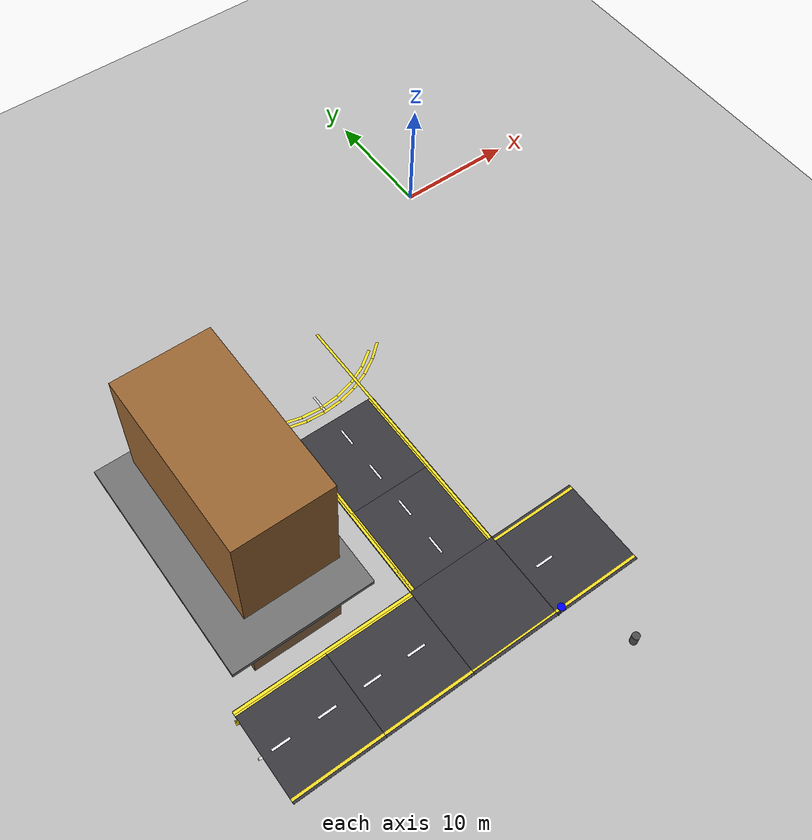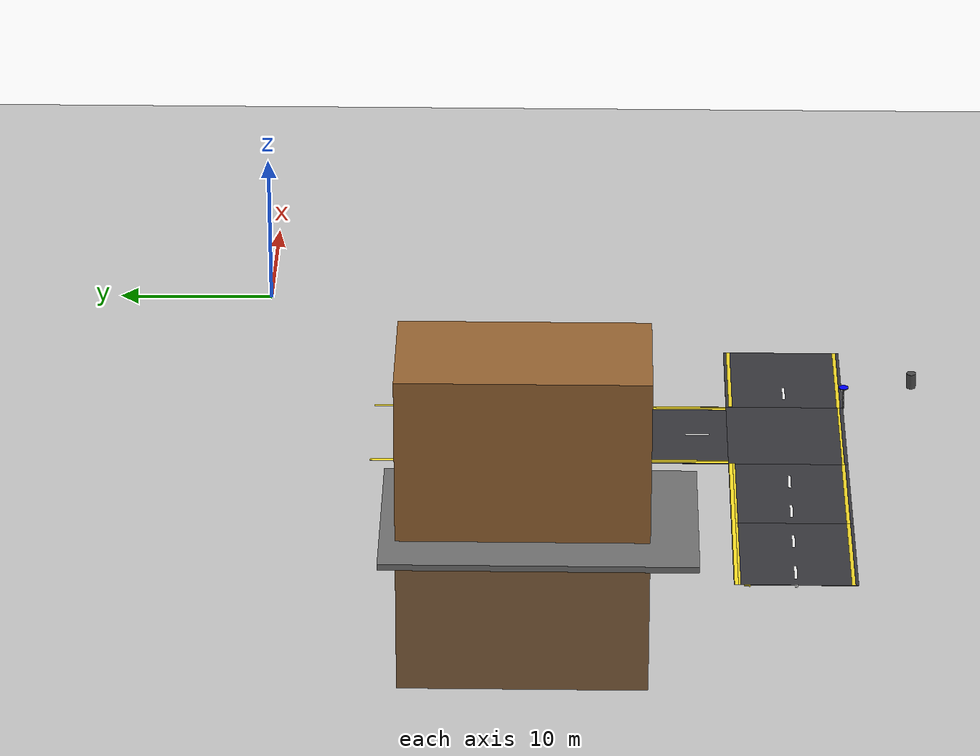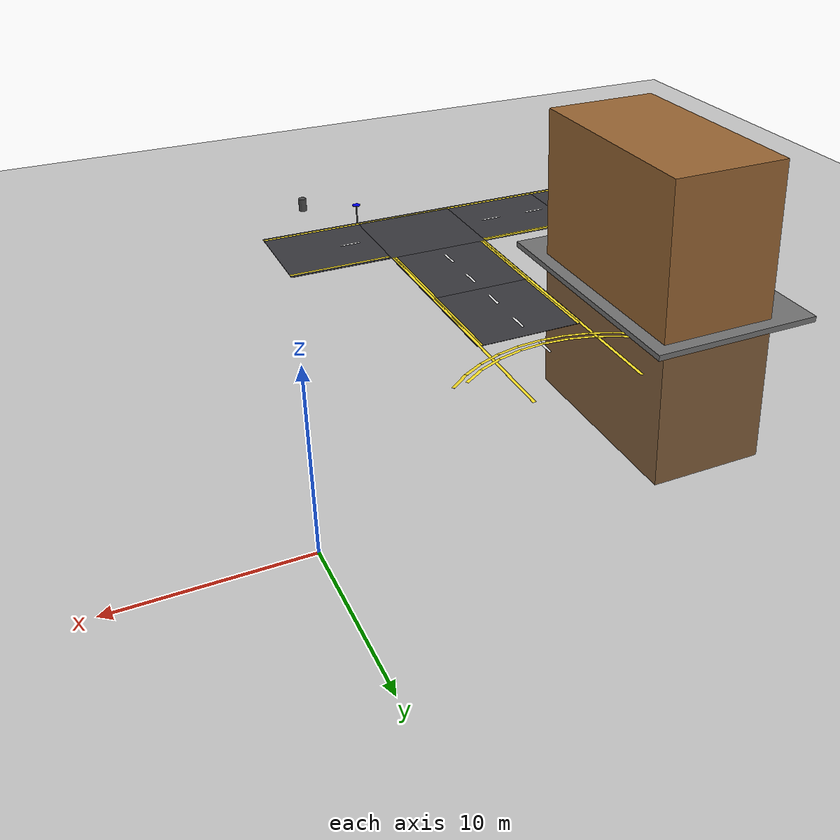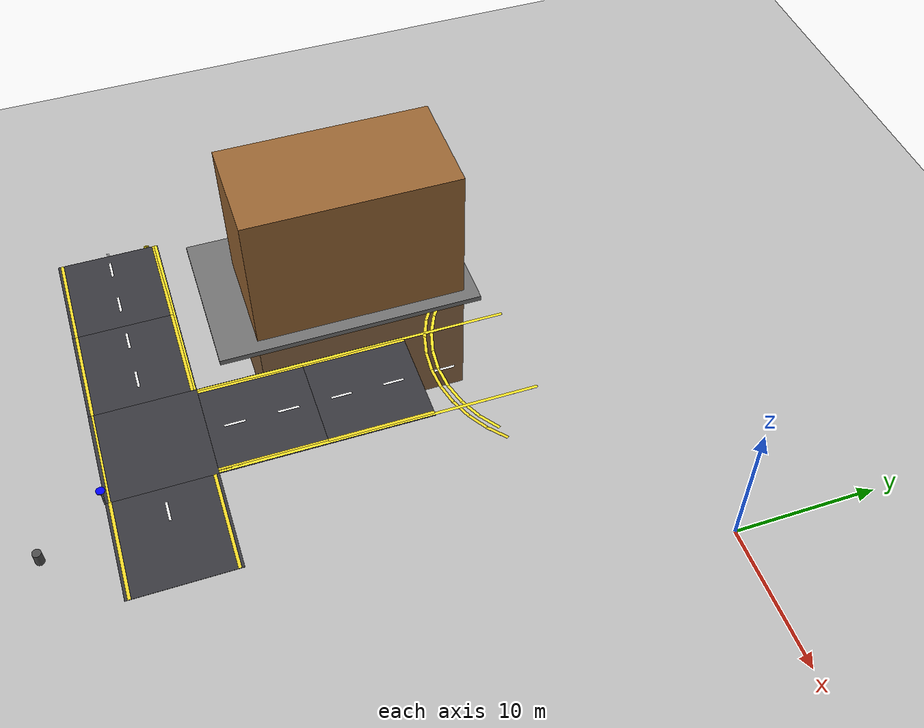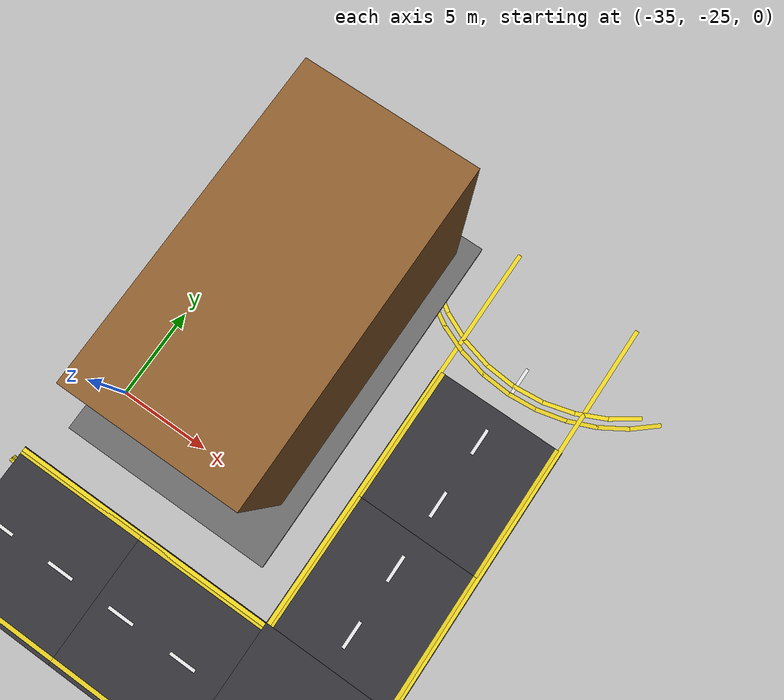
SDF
<sdf version="1.7">
 <world name="compact_city">
  <model name="ground_plane">
   <static>1</static>
   <pose>0 0 0.01 0 -0 0</pose>
   <link name="link">
    <collision name="collision">
     <geometry><plane><normal>0 0 1</normal><size>200 200</size></plane></geometry>
    </collision>
    <visual name="visual">
     <geometry><plane><normal>0 0 1</normal><size>200 200</size></plane></geometry>
     <material>
      <ambient>0.2 0.2 0.2 1</ambient>
      <diffuse>0.25 0.25 0.25 1</diffuse>
      <specular>0.1 0.1 0.1 1</specular>
     </material>
    </visual>
   </link>
  </model>
  <model name="road_tile_61">
   <static>1</static>
   <pose>-18.75 -18.75 0.015 0 -0 1.5708</pose>
   <link name="link">
    <collision name="collision"><geometry><box><size>7.5 7.5 0.03</size></box></geometry></collision>
    <visual name="visual">
     <geometry><box><size>7.5 7.5 0.03</size></box></geometry>
     <material>
      <ambient>0.18 0.18 0.2 1</ambient>
      <diffuse>0.22 0.22 0.24 1</diffuse>
      <specular>0.1 0.1 0.1 1</specular>
     </material>
    </visual>
   </link>
  </model>
  <model name="road_tile_65">
   <static>1</static>
   <pose>-18.75 -26.25 0.015 0 -0 1.5708</pose>
   <link name="link">
    <collision name="collision"><geometry><box><size>7.5 7.5 0.03</size></box></geometry></collision>
    <visual name="visual">
     <geometry><box><size>7.5 7.5 0.03</size></box></geometry>
     <material>
      <ambient>0.18 0.18 0.2 1</ambient>
      <diffuse>0.22 0.22 0.24 1</diffuse>
      <specular>0.1 0.1 0.1 1</specular>
     </material>
    </visual>
   </link>
  </model>
  <model name="road_tile_69">
   <static>1</static>
   <pose>-33.75 -33.75 0.015 0 -0 0</pose>
   <link name="link">
    <collision name="collision"><geometry><box><size>7.5 7.5 0.03</size></box></geometry></collision>
    <visual name="visual">
     <geometry><box><size>7.5 7.5 0.03</size></box></geometry>
     <material>
      <ambient>0.18 0.18 0.2 1</ambient>
      <diffuse>0.22 0.22 0.24 1</diffuse>
      <specular>0.1 0.1 0.1 1</specular>
     </material>
    </visual>
   </link>
  </model>
  <model name="road_tile_70">
   <static>1</static>
   <pose>-26.25 -33.75 0.015 0 -0 0</pose>
   <link name="link">
    <collision name="collision"><geometry><box><size>7.5 7.5 0.03</size></box></geometry></collision>
    <visual name="visual">
     <geometry><box><size>7.5 7.5 0.03</size></box></geometry>
     <material>
      <ambient>0.18 0.18 0.2 1</ambient>
      <diffuse>0.22 0.22 0.24 1</diffuse>
      <specular>0.1 0.1 0.1 1</specular>
     </material>
    </visual>
   </link>
  </model>
  <model name="road_tile_71">
   <static>1</static>
   <pose>-18.75 -33.75 0.015 0 -0 0</pose>
   <link name="link">
    <collision name="collision"><geometry><box><size>7.5 7.5 0.03</size></box></geometry></collision>
    <visual name="visual">
     <geometry><box><size>7.5 7.5 0.03</size></box></geometry>
     <material>
      <ambient>0.18 0.18 0.2 1</ambient>
      <diffuse>0.22 0.22 0.24 1</diffuse>
      <specular>0.1 0.1 0.1 1</specular>
     </material>
    </visual>
   </link>
  </model>
  <model name="road_tile_72">
   <static>1</static>
   <pose>-11.25 -33.75 0.015 0 -0 0</pose>
   <link name="link">
    <collision name="collision"><geometry><box><size>7.5 7.5 0.03</size></box></geometry></collision>
    <visual name="visual">
     <geometry><box><size>7.5 7.5 0.03</size></box></geometry>
     <material>
      <ambient>0.18 0.18 0.2 1</ambient>
      <diffuse>0.22 0.22 0.24 1</diffuse>
      <specular>0.1 0.1 0.1 1</specular>
     </material>
    </visual>
   </link>
  </model>
  <model name="sidewalk_area_bot_left">
   <static>1</static>
   <pose>-30.1519 -18.2183 0.2 0 -0 0</pose>
   <link name="link">
    <collision name="collision"><geometry><box><size>12 19.5 0.4</size></box></geometry></collision>
    <visual name="visual">
     <geometry><box><size>12 19.5 0.4</size></box></geometry>
     <material>
      <ambient>0.4 0.4 0.4 1</ambient>
      <diffuse>0.45 0.45 0.45 1</diffuse>
      <specular>0.2 0.2 0.2 1</specular>
     </material>
    </visual>
   </link>
  </model>
  <model name="el_147">
   <static>1</static>
   <pose>-33.75 -37.2 0.038 0 -0 0</pose>
   <link name="link">
    <visual name="v">
     <geometry><box><size>7.5 0.225 0.002</size></box></geometry>
     <material><ambient>0.9 0.8 0.1 1</ambient><diffuse>0.95 0.85 0.15 1</diffuse></material>
    </visual>
   </link>
  </model>
  <model name="el_148">
   <static>1</static>
   <pose>-33.75 -30.3 0.038 0 -0 0</pose>
   <link name="link">
    <visual name="v">
     <geometry><box><size>7.5 0.225 0.002</size></box></geometry>
     <material><ambient>0.9 0.8 0.1 1</ambient><diffuse>0.95 0.85 0.15 1</diffuse></material>
    </visual>
   </link>
  </model>
  <model name="el_155">
   <static>1</static>
   <pose>-26.25 -37.2 0.038 0 -0 0</pose>
   <link name="link">
    <visual name="v">
     <geometry><box><size>7.5 0.225 0.002</size></box></geometry>
     <material><ambient>0.9 0.8 0.1 1</ambient><diffuse>0.95 0.85 0.15 1</diffuse></material>
    </visual>
   </link>
  </model>
  <model name="el_156">
   <static>1</static>
   <pose>-26.25 -30.3 0.038 0 -0 0</pose>
   <link name="link">
    <visual name="v">
     <geometry><box><size>7.5 0.225 0.002</size></box></geometry>
     <material><ambient>0.9 0.8 0.1 1</ambient><diffuse>0.95 0.85 0.15 1</diffuse></material>
    </visual>
   </link>
  </model>
  <model name="el_163">
   <static>1</static>
   <pose>-22.2 -26.25 0.038 0 -0 1.5708</pose>
   <link name="link">
    <visual name="v">
     <geometry><box><size>7.5 0.225 0.002</size></box></geometry>
     <material><ambient>0.9 0.8 0.1 1</ambient><diffuse>0.95 0.85 0.15 1</diffuse></material>
    </visual>
   </link>
  </model>
  <model name="el_164">
   <static>1</static>
   <pose>-15.3 -26.25 0.038 0 -0 1.5708</pose>
   <link name="link">
    <visual name="v">
     <geometry><box><size>7.5 0.225 0.002</size></box></geometry>
     <material><ambient>0.9 0.8 0.1 1</ambient><diffuse>0.95 0.85 0.15 1</diffuse></material>
    </visual>
   </link>
  </model>
  <model name="el_165">
   <static>1</static>
   <pose>-22.2 -18.75 0.038 0 -0 1.5708</pose>
   <link name="link">
    <visual name="v">
     <geometry><box><size>7.5 0.225 0.002</size></box></geometry>
     <material><ambient>0.9 0.8 0.1 1</ambient><diffuse>0.95 0.85 0.15 1</diffuse></material>
    </visual>
   </link>
  </model>
  <model name="el_166">
   <static>1</static>
   <pose>-15.3 -18.75 0.038 0 -0 1.5708</pose>
   <link name="link">
    <visual name="v">
     <geometry><box><size>7.5 0.225 0.002</size></box></geometry>
     <material><ambient>0.9 0.8 0.1 1</ambient><diffuse>0.95 0.85 0.15 1</diffuse></material>
    </visual>
   </link>
  </model>
  <model name="el_179">
   <static>1</static>
   <pose>-11.25 -37.2 0.038 0 -0 0</pose>
   <link name="link">
    <visual name="v">
     <geometry><box><size>7.5 0.225 0.002</size></box></geometry>
     <material><ambient>0.9 0.8 0.1 1</ambient><diffuse>0.95 0.85 0.15 1</diffuse></material>
    </visual>
   </link>
  </model>
  <model name="el_180">
   <static>1</static>
   <pose>-11.25 -30.3 0.038 0 -0 0</pose>
   <link name="link">
    <visual name="v">
     <geometry><box><size>7.5 0.225 0.002</size></box></geometry>
     <material><ambient>0.9 0.8 0.1 1</ambient><diffuse>0.95 0.85 0.15 1</diffuse></material>
    </visual>
   </link>
  </model>
  <model name="ld_17">
   <static>1</static>
   <pose>-18.75 -28.125 0.038 0 -0 1.5708</pose>
   <link name="link">
    <visual name="v">
     <geometry><box><size>1.5 0.18 0.002</size></box></geometry>
     <material><ambient>1 1 1 1</ambient><diffuse>0.95 0.95 0.95 1</diffuse></material>
    </visual>
   </link>
  </model>
  <model name="ld_18">
   <static>1</static>
   <pose>-18.75 -24.375 0.038 0 -0 1.5708</pose>
   <link name="link">
    <visual name="v">
     <geometry><box><size>1.5 0.18 0.002</size></box></geometry>
     <material><ambient>1 1 1 1</ambient><diffuse>0.95 0.95 0.95 1</diffuse></material>
    </visual>
   </link>
  </model>
  <model name="ld_19">
   <static>1</static>
   <pose>-18.75 -20.625 0.038 0 -0 1.5708</pose>
   <link name="link">
    <visual name="v">
     <geometry><box><size>1.5 0.18 0.002</size></box></geometry>
     <material><ambient>1 1 1 1</ambient><diffuse>0.95 0.95 0.95 1</diffuse></material>
    </visual>
   </link>
  </model>
  <model name="ld_20">
   <static>1</static>
   <pose>-18.75 -16.875 0.038 0 -0 1.5708</pose>
   <link name="link">
    <visual name="v">
     <geometry><box><size>1.5 0.18 0.002</size></box></geometry>
     <material><ambient>1 1 1 1</ambient><diffuse>0.95 0.95 0.95 1</diffuse></material>
    </visual>
   </link>
  </model>
  <model name="ld_21">
   <static>1</static>
   <pose>-18.75 -13.125 0.038 0 -0 1.5708</pose>
   <link name="link">
    <visual name="v">
     <geometry><box><size>1.5 0.18 0.002</size></box></geometry>
     <material><ambient>1 1 1 1</ambient><diffuse>0.95 0.95 0.95 1</diffuse></material>
    </visual>
   </link>
  </model>
  <model name="ld_117">
   <static>1</static>
   <pose>-36 -33.75 0.038 0 -0 0</pose>
   <link name="link">
    <visual name="v">
     <geometry><box><size>1.5 0.18 0.002</size></box></geometry>
     <material><ambient>1 1 1 1</ambient><diffuse>0.95 0.95 0.95 1</diffuse></material>
    </visual>
   </link>
  </model>
  <model name="ld_118">
   <static>1</static>
   <pose>-32.25 -33.75 0.038 0 -0 0</pose>
   <link name="link">
    <visual name="v">
     <geometry><box><size>1.5 0.18 0.002</size></box></geometry>
     <material><ambient>1 1 1 1</ambient><diffuse>0.95 0.95 0.95 1</diffuse></material>
    </visual>
   </link>
  </model>
  <model name="ld_119">
   <static>1</static>
   <pose>-28.5 -33.75 0.038 0 -0 0</pose>
   <link name="link">
    <visual name="v">
     <geometry><box><size>1.5 0.18 0.002</size></box></geometry>
     <material><ambient>1 1 1 1</ambient><diffuse>0.95 0.95 0.95 1</diffuse></material>
    </visual>
   </link>
  </model>
  <model name="ld_120">
   <static>1</static>
   <pose>-24.75 -33.75 0.038 0 -0 0</pose>
   <link name="link">
    <visual name="v">
     <geometry><box><size>1.5 0.18 0.002</size></box></geometry>
     <material><ambient>1 1 1 1</ambient><diffuse>0.95 0.95 0.95 1</diffuse></material>
    </visual>
   </link>
  </model>
  <model name="ld_121">
   <static>1</static>
   <pose>-13.125 -33.75 0.038 0 -0 0</pose>
   <link name="link">
    <visual name="v">
     <geometry><box><size>1.5 0.18 0.002</size></box></geometry>
     <material><ambient>1 1 1 1</ambient><diffuse>0.95 0.95 0.95 1</diffuse></material>
    </visual>
   </link>
  </model>
  <model name="ie_283">
   <static>1</static>
   <pose>-18.75 -37.2 0.038 0 -0 0</pose>
   <link name="link">
    <visual name="v">
     <geometry><box><size>7.5 0.15 0.002</size></box></geometry>
     <material><ambient>0.9 0.8 0.1 1</ambient><diffuse>0.95 0.85 0.15 1</diffuse></material>
    </visual>
   </link>
  </model>
  <model name="ac_521">
   <static>1</static>
   <pose>-37.6227 -33.748 0.038 0 0 -0.032685</pose>
   <link name="link">
    <visual name="v">
     <geometry><box><size>0.260117 0.18 0.002</size></box></geometry>
     <material><ambient>1 1 1 1</ambient><diffuse>0.95 0.95 0.95 1</diffuse></material>
    </visual>
   </link>
  </model>
  <model name="ai_542">
   <static>1</static>
   <pose>-37.6703 -30.7304 0.038 0 0 -0.229085</pose>
   <link name="link">
    <visual name="v">
     <geometry><box><size>0.06 0.225 0.002</size></box></geometry>
     <material><ambient>0.9 0.8 0.1 1</ambient><diffuse>0.95 0.85 0.15 1</diffuse></material>
    </visual>
   </link>
  </model>
  <model name="ai_543">
   <static>1</static>
   <pose>-37.6221 -30.74 0.038 0 0 -0.163585</pose>
   <link name="link">
    <visual name="v">
     <geometry><box><size>0.06 0.225 0.002</size></box></geometry>
     <material><ambient>0.9 0.8 0.1 1</ambient><diffuse>0.95 0.85 0.15 1</diffuse></material>
    </visual>
   </link>
  </model>
  <model name="ai_544">
   <static>1</static>
   <pose>-37.5735 -30.7464 0.038 0 0 -0.098185</pose>
   <link name="link">
    <visual name="v">
     <geometry><box><size>0.06 0.225 0.002</size></box></geometry>
     <material><ambient>0.9 0.8 0.1 1</ambient><diffuse>0.95 0.85 0.15 1</diffuse></material>
    </visual>
   </link>
  </model>
  <model name="ai_545">
   <static>1</static>
   <pose>-37.5246 -30.7495 0.038 0 0 -0.032685</pose>
   <link name="link">
    <visual name="v">
     <geometry><box><size>0.06 0.225 0.002</size></box></geometry>
     <material><ambient>0.9 0.8 0.1 1</ambient><diffuse>0.95 0.85 0.15 1</diffuse></material>
    </visual>
   </link>
  </model>
  <model name="ro_699">
   <static>1</static>
   <pose>-25.5093 -11.5362 0.038 0 0 -0.706885</pose>
   <link name="link">
    <visual name="v">
     <geometry><box><size>1.6806 0.225 0.002</size></box></geometry>
     <material><ambient>0.9 0.8 0.1 1</ambient><diffuse>0.95 0.85 0.15 1</diffuse></material>
    </visual>
   </link>
  </model>
  <model name="ro_700">
   <static>1</static>
   <pose>-24.2145 -12.477 0.038 0 0 -0.549785</pose>
   <link name="link">
    <visual name="v">
     <geometry><box><size>1.6806 0.225 0.002</size></box></geometry>
     <material><ambient>0.9 0.8 0.1 1</ambient><diffuse>0.95 0.85 0.15 1</diffuse></material>
    </visual>
   </link>
  </model>
  <model name="ro_701">
   <static>1</static>
   <pose>-22.7883 -13.2036 0.038 0 0 -0.392685</pose>
   <link name="link">
    <visual name="v">
     <geometry><box><size>1.6806 0.225 0.002</size></box></geometry>
     <material><ambient>0.9 0.8 0.1 1</ambient><diffuse>0.95 0.85 0.15 1</diffuse></material>
    </visual>
   </link>
  </model>
  <model name="ro_702">
   <static>1</static>
   <pose>-21.2661 -13.6982 0.038 0 0 -0.235585</pose>
   <link name="link">
    <visual name="v">
     <geometry><box><size>1.6806 0.225 0.002</size></box></geometry>
     <material><ambient>0.9 0.8 0.1 1</ambient><diffuse>0.95 0.85 0.15 1</diffuse></material>
    </visual>
   </link>
  </model>
  <model name="ro_703">
   <static>1</static>
   <pose>-19.6852 -13.9485 0.038 0 0 -0.078585</pose>
   <link name="link">
    <visual name="v">
     <geometry><box><size>1.6806 0.225 0.002</size></box></geometry>
     <material><ambient>0.9 0.8 0.1 1</ambient><diffuse>0.95 0.85 0.15 1</diffuse></material>
    </visual>
   </link>
  </model>
  <model name="ro_704">
   <static>1</static>
   <pose>-18.0847 -13.9485 0.038 0 -0 0.078515</pose>
   <link name="link">
    <visual name="v">
     <geometry><box><size>1.6806 0.225 0.002</size></box></geometry>
     <material><ambient>0.9 0.8 0.1 1</ambient><diffuse>0.95 0.85 0.15 1</diffuse></material>
    </visual>
   </link>
  </model>
  <model name="ro_705">
   <static>1</static>
   <pose>-16.5039 -13.6982 0.038 0 -0 0.235615</pose>
   <link name="link">
    <visual name="v">
     <geometry><box><size>1.6806 0.225 0.002</size></box></geometry>
     <material><ambient>0.9 0.8 0.1 1</ambient><diffuse>0.95 0.85 0.15 1</diffuse></material>
    </visual>
   </link>
  </model>
  <model name="ro_706">
   <static>1</static>
   <pose>-14.9817 -13.2036 0.038 0 -0 0.392715</pose>
   <link name="link">
    <visual name="v">
     <geometry><box><size>1.6806 0.225 0.002</size></box></geometry>
     <material><ambient>0.9 0.8 0.1 1</ambient><diffuse>0.95 0.85 0.15 1</diffuse></material>
    </visual>
   </link>
  </model>
  <model name="ro_707">
   <static>1</static>
   <pose>-13.5555 -12.477 0.038 0 -0 0.549815</pose>
   <link name="link">
    <visual name="v">
     <geometry><box><size>1.6806 0.225 0.002</size></box></geometry>
     <material><ambient>0.9 0.8 0.1 1</ambient><diffuse>0.95 0.85 0.15 1</diffuse></material>
    </visual>
   </link>
  </model>
  <model name="ro_708">
   <static>1</static>
   <pose>-12.2607 -11.5362 0.038 0 -0 0.706815</pose>
   <link name="link">
    <visual name="v">
     <geometry><box><size>1.6806 0.225 0.002</size></box></geometry>
     <material><ambient>0.9 0.8 0.1 1</ambient><diffuse>0.95 0.85 0.15 1</diffuse></material>
    </visual>
   </link>
  </model>
  <model name="traffic_sign_3">
   <static>1</static>
   <pose>-15 -37.5 1.5 0 -0 1.57</pose>
   <link name="link">
    <collision name="collision">
     <geometry><cylinder><radius>0.3</radius><length>0.05</length></cylinder></geometry>
    </collision>
    <visual name="visual">
     <geometry><cylinder><radius>0.3</radius><length>0.05</length></cylinder></geometry>
     <material><ambient>0 0 1 1</ambient><diffuse>0 0 1 1</diffuse></material>
    </visual>
    <collision name="pole_col">
     <pose>0 0 -0.75 0 -0 0</pose>
     <geometry><cylinder><radius>0.05</radius><length>1.5</length></cylinder></geometry>
    </collision>
    <visual name="pole">
     <pose>0 0 -0.75 0 -0 0</pose>
     <geometry><cylinder><radius>0.05</radius><length>1.5</length></cylinder></geometry>
     <material><ambient>0.5 0.5 0.5 1</ambient><diffuse>0.5 0.5 0.5 1</diffuse></material>
    </visual>
   </link>
  </model>
  <model name="bin_3">
   <static>1</static>
   <pose>-12 -42 0.5 0 -0 0</pose>
   <link name="link">
    <collision name="collision">
     <geometry><cylinder><radius>0.3</radius><length>1</length></cylinder></geometry>
    </collision>
    <visual name="visual">
     <geometry><cylinder><radius>0.3</radius><length>1</length></cylinder></geometry>
     <material><ambient>0.2 0.2 0.2 1</ambient><diffuse>0.3 0.3 0.3 1</diffuse></material>
    </visual>
   </link>
  </model>
  <model name="edge_h_20">
   <static>1</static>
   <pose>-30 -30.15 0.038 0 -0 0</pose>
   <link name="link">
    <visual name="visual">
     <geometry><box><size>15 0.225 0.002</size></box></geometry>
     <material><ambient>0.95 0.85 0.1 1</ambient><diffuse>1 0.9 0.15 1</diffuse></material>
    </visual>
   </link>
  </model>
  <model name="edge_v_29">
   <static>1</static>
   <pose>-22.35 -18.75 0.038 0 -0 1.5708</pose>
   <link name="link">
    <visual name="visual">
     <geometry><box><size>22.5 0.225 0.002</size></box></geometry>
     <material><ambient>0.95 0.85 0.1 1</ambient><diffuse>1 0.9 0.15 1</diffuse></material>
    </visual>
   </link>
  </model>
  <model name="edge_v_30">
   <static>1</static>
   <pose>-15.15 -18.75 0.038 0 -0 1.5708</pose>
   <link name="link">
    <visual name="visual">
     <geometry><box><size>22.5 0.225 0.002</size></box></geometry>
     <material><ambient>0.95 0.85 0.1 1</ambient><diffuse>1 0.9 0.15 1</diffuse></material>
    </visual>
   </link>
  </model>
  <model name="arc_c_344">
   <static>1</static>
   <pose>-37.6472 -33.7441 0.038 0 0 -0.0393</pose>
   <link name="link">
    <visual name="visual">
     <geometry><box><size>0.324449 0.18 0.002</size></box></geometry>
     <material><ambient>1 1 1 1</ambient><diffuse>0.95 0.95 0.95 1</diffuse></material>
    </visual>
   </link>
  </model>
  <model name="arc_in_362">
   <static>1</static>
   <pose>-37.6755 -30.882 0.038 0 0 -0.1963</pose>
   <link name="link">
    <visual name="visual">
     <geometry><box><size>0.100668 0.225 0.002</size></box></geometry>
     <material><ambient>0.95 0.85 0.1 1</ambient><diffuse>1 0.9 0.15 1</diffuse></material>
    </visual>
   </link>
  </model>
  <model name="arc_in_363">
   <static>1</static>
   <pose>-37.6058 -30.8931 0.038 0 0 -0.1178</pose>
   <link name="link">
    <visual name="visual">
     <geometry><box><size>0.100668 0.225 0.002</size></box></geometry>
     <material><ambient>0.95 0.85 0.1 1</ambient><diffuse>1 0.9 0.15 1</diffuse></material>
    </visual>
   </link>
  </model>
  <model name="arc_in_364">
   <static>1</static>
   <pose>-37.5352 -30.8986 0.038 0 0 -0.0393</pose>
   <link name="link">
    <visual name="visual">
     <geometry><box><size>0.100668 0.225 0.002</size></box></geometry>
     <material><ambient>0.95 0.85 0.1 1</ambient><diffuse>1 0.9 0.15 1</diffuse></material>
    </visual>
   </link>
  </model>
  <model name="ra_outer_560">
   <static>1</static>
   <pose>-24.4562 -11.7363 0.038 0 0 -0.6109</pose>
   <link name="link">
    <visual name="visual">
     <geometry><box><size>1.72953 0.225 0.002</size></box></geometry>
     <material><ambient>0.95 0.85 0.1 1</ambient><diffuse>1 0.9 0.15 1</diffuse></material>
    </visual>
   </link>
  </model>
  <model name="ra_outer_561">
   <static>1</static>
   <pose>-22.9899 -12.5829 0.038 0 0 -0.4363</pose>
   <link name="link">
    <visual name="visual">
     <geometry><box><size>1.72953 0.225 0.002</size></box></geometry>
     <material><ambient>0.95 0.85 0.1 1</ambient><diffuse>1 0.9 0.15 1</diffuse></material>
    </visual>
   </link>
  </model>
  <model name="ra_outer_562">
   <static>1</static>
   <pose>-21.3988 -13.1619 0.038 0 0 -0.2618</pose>
   <link name="link">
    <visual name="visual">
     <geometry><box><size>1.72953 0.225 0.002</size></box></geometry>
     <material><ambient>0.95 0.85 0.1 1</ambient><diffuse>1 0.9 0.15 1</diffuse></material>
    </visual>
   </link>
  </model>
  <model name="ra_outer_563">
   <static>1</static>
   <pose>-19.7316 -13.4559 0.038 0 0 -0.0873</pose>
   <link name="link">
    <visual name="visual">
     <geometry><box><size>1.72953 0.225 0.002</size></box></geometry>
     <material><ambient>0.95 0.85 0.1 1</ambient><diffuse>1 0.9 0.15 1</diffuse></material>
    </visual>
   </link>
  </model>
  <model name="ra_outer_564">
   <static>1</static>
   <pose>-18.0384 -13.4559 0.038 0 -0 0.0873</pose>
   <link name="link">
    <visual name="visual">
     <geometry><box><size>1.72953 0.225 0.002</size></box></geometry>
     <material><ambient>0.95 0.85 0.1 1</ambient><diffuse>1 0.9 0.15 1</diffuse></material>
    </visual>
   </link>
  </model>
  <model name="ra_outer_565">
   <static>1</static>
   <pose>-16.3712 -13.1619 0.038 0 -0 0.2618</pose>
   <link name="link">
    <visual name="visual">
     <geometry><box><size>1.72953 0.225 0.002</size></box></geometry>
     <material><ambient>0.95 0.85 0.1 1</ambient><diffuse>1 0.9 0.15 1</diffuse></material>
    </visual>
   </link>
  </model>
  <model name="ra_outer_566">
   <static>1</static>
   <pose>-14.7801 -12.5829 0.038 0 -0 0.4363</pose>
   <link name="link">
    <visual name="visual">
     <geometry><box><size>1.72953 0.225 0.002</size></box></geometry>
     <material><ambient>0.95 0.85 0.1 1</ambient><diffuse>1 0.9 0.15 1</diffuse></material>
    </visual>
   </link>
  </model>
  <model name="ra_outer_567">
   <static>1</static>
   <pose>-13.3139 -11.7363 0.038 0 -0 0.6109</pose>
   <link name="link">
    <visual name="visual">
     <geometry><box><size>1.72953 0.225 0.002</size></box></geometry>
     <material><ambient>0.95 0.85 0.1 1</ambient><diffuse>1 0.9 0.15 1</diffuse></material>
    </visual>
   </link>
  </model>
  <model name="box_7_clone_clone_clone_2">
   <static>1</static>
   <pose>-29.2175 -17.2296 0.6 0 -0 0</pose>
   <link name="link">
    <collision name="collision"><geometry><box><size>8.15504 15.5641 21.3231</size></box></geometry></collision>
    <visual name="visual">
     <geometry><box><size>8.15504 15.5641 21.3231</size></box></geometry>
     <material><ambient>0.6 0.4 0.2 1</ambient><diffuse>0.6 0.4 0.2 1</diffuse></material>
    </visual>
   </link>
  </model>
 </world>
</sdf>
